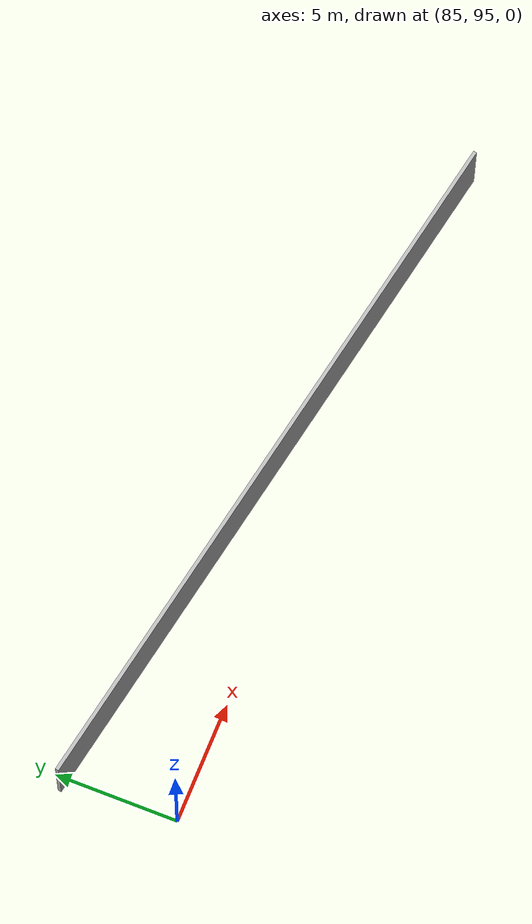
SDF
<?xml version="1.0" ?>
<sdf version="1.6">
  <model name="sps_0901">
    <pose frame="">0 0 0 0 -0 0</pose>
    <static>1</static>
    <self_collide>0</self_collide>
    <allow_auto_disable>0</allow_auto_disable>
    <link name="Wall122">
      <kinematic>0</kinematic>
      <gravity>1</gravity>
      <self_collide>0</self_collide>
      <collision name="collision">
        <geometry>
          <box>
            <size>30.4151 0.15 2.5</size>
          </box>
        </geometry>
        <pose frame="">0 0 0 0 -0 0</pose>
      </collision>
      <visual name="visual">
        <geometry>
          <box>
            <size>30.4151 0.15 2.5</size>
          </box>
        </geometry>
        <pose frame="">0 0 0 0 -0 0</pose>
        <cast_shadows>1</cast_shadows>
        <transparency>0.0</transparency>
      </visual>
      <pose frame="">99.4329 96.8882 1.25 0 0 -0.179431</pose>
    </link>
  </model>
</sdf>
